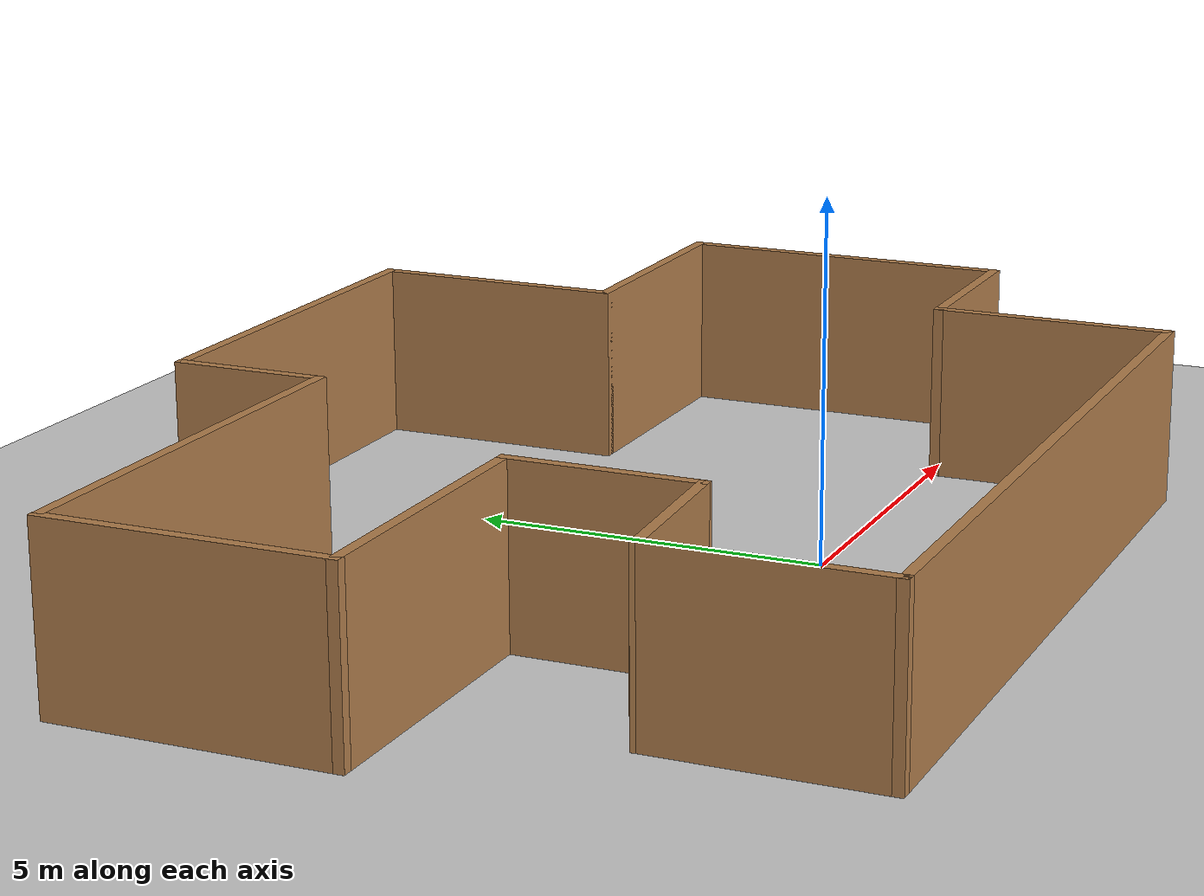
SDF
<sdf version="1.7">
 <world name="default">
  <light name="sun" type="directional">
   <pose>0 0 10 0 -0 0</pose>
   <diffuse>0.8 0.8 0.8 1</diffuse>
   <specular>0.2 0.2 0.2 1</specular>
   <attenuation>
    <range>1000</range>
    <constant>0.9</constant>
    <linear>0.01</linear>
    <quadratic>0.001</quadratic>
   </attenuation>
   <direction>-0.5 0.1 -0.9</direction>
   <spot><inner_angle>0</inner_angle><outer_angle>0</outer_angle><falloff>0</falloff></spot>
  </light>
  <model name="ground_plane">
   <static>1</static>
   <link name="link">
    <collision name="collision">
     <geometry><plane><normal>0 0 1</normal><size>100 100</size></plane></geometry>
     <surface>
      <contact><collide_bitmask>65535</collide_bitmask></contact>
      <friction><ode><mu>100</mu><mu2>50</mu2></ode></friction>
     </surface>
    </collision>
    <visual name="visual">
     <cast_shadows>0</cast_shadows>
     <geometry><plane><normal>0 0 1</normal><size>100 100</size></plane></geometry>
     <material>
      <script><uri>file://media/materials/scripts/gazebo.material</uri><name>Gazebo/Grey</name></script>
     </material>
    </visual>
   </link>
  </model>
  <gravity>0 0 -9.8</gravity>
  <magnetic_field>6e-06 2.3e-05 -4.2e-05</magnetic_field>
  <atmosphere type="adiabatic"/>
  <physics type="ode">
   <max_step_size>0.001</max_step_size>
   <real_time_factor>1</real_time_factor>
   <real_time_update_rate>1000</real_time_update_rate>
  </physics>
  <scene><ambient>0.4 0.4 0.4 1</ambient><background>0.7 0.7 0.7 1</background><shadows>1</shadows></scene>
  <spherical_coordinates>
   <surface_model>EARTH_WGS84</surface_model>
   <latitude_deg>0</latitude_deg>
   <longitude_deg>0</longitude_deg>
   <elevation>0</elevation>
   <heading_deg>0</heading_deg>
  </spherical_coordinates>
  <model name="model.world">
   <pose>-0.75927 2.45635 0 0 -0 0</pose>
   <link name="Wall_1">
    <collision name="Wall_1_Collision">
     <geometry><box><size>2.75 0.15 2.5</size></box></geometry>
     <pose>0 0 1.25 0 -0 0</pose>
    </collision>
    <visual name="Wall_1_Visual">
     <pose>0 0 1.25 0 -0 0</pose>
     <geometry><box><size>2.75 0.15 2.5</size></box></geometry>
     <material>
      <script><uri>file://media/materials/scripts/gazebo.material</uri><name>Gazebo/Wood</name></script>
      <ambient>1 1 1 1</ambient>
     </material>
     <meta><layer>0</layer></meta>
    </visual>
    <pose>-3.8 -1.35 0 0 -0 1.5708</pose>
   </link>
   <link name="Wall_10">
    <collision name="Wall_10_Collision">
     <geometry><box><size>2.75 0.15 2.5</size></box></geometry>
     <pose>0 0 1.25 0 -0 0</pose>
    </collision>
    <visual name="Wall_10_Visual">
     <pose>0 0 1.25 0 -0 0</pose>
     <geometry><box><size>2.75 0.15 2.5</size></box></geometry>
     <material>
      <script><uri>file://media/materials/scripts/gazebo.material</uri><name>Gazebo/Wood</name></script>
      <ambient>1 1 1 1</ambient>
     </material>
     <meta><layer>0</layer></meta>
    </visual>
    <pose>6.6 -2.55 0 0 -0 3.14159</pose>
   </link>
   <link name="Wall_11">
    <collision name="Wall_11_Collision">
     <geometry><box><size>3.5 0.15 2.5</size></box></geometry>
     <pose>0 0 1.25 0 -0 0</pose>
    </collision>
    <visual name="Wall_11_Visual">
     <pose>0 0 1.25 0 -0 0</pose>
     <geometry><box><size>3.5 0.15 2.5</size></box></geometry>
     <material>
      <script><uri>file://media/materials/scripts/gazebo.material</uri><name>Gazebo/Wood</name></script>
      <ambient>1 1 1 1</ambient>
     </material>
     <meta><layer>0</layer></meta>
    </visual>
    <pose>5.3 -4.225 0 0 -0 -1.5708</pose>
   </link>
   <link name="Wall_12">
    <collision name="Wall_12_Collision">
     <geometry><box><size>11.5 0.15 2.5</size></box></geometry>
     <pose>0 0 1.25 0 -0 0</pose>
    </collision>
    <visual name="Wall_12_Visual">
     <pose>0 0 1.25 0 -0 0</pose>
     <geometry><box><size>11.5 0.15 2.5</size></box></geometry>
     <material>
      <script><uri>file://media/materials/scripts/gazebo.material</uri><name>Gazebo/Wood</name></script>
      <ambient>1 1 1 1</ambient>
     </material>
     <meta><layer>0</layer></meta>
    </visual>
    <pose>-0.375 -5.9 0 0 -0 3.14159</pose>
   </link>
   <link name="Wall_13">
    <collision name="Wall_13_Collision">
     <geometry><box><size>3.25 0.15 2.5</size></box></geometry>
     <pose>0 0 1.25 0 -0 0</pose>
    </collision>
    <visual name="Wall_13_Visual">
     <pose>0 0 1.25 0 -0 0</pose>
     <geometry><box><size>3.25 0.15 2.5</size></box></geometry>
     <material>
      <script><uri>file://media/materials/scripts/gazebo.material</uri><name>Gazebo/Wood</name></script>
      <ambient>1 1 1 1</ambient>
     </material>
     <meta><layer>0</layer></meta>
    </visual>
    <pose>-6.05 -4.35 0 0 -0 1.5708</pose>
   </link>
   <link name="Wall_14">
    <collision name="Wall_14_Collision">
     <geometry><box><size>2.40499 0.15 2.5</size></box></geometry>
     <pose>0 0 1.25 0 -0 0</pose>
    </collision>
    <visual name="Wall_14_Visual">
     <pose>0 0 1.25 0 -0 0</pose>
     <geometry><box><size>2.40499 0.15 2.5</size></box></geometry>
     <material>
      <script><uri>file://media/materials/scripts/gazebo.material</uri><name>Gazebo/Wood</name></script>
      <ambient>1 1 1 1</ambient>
     </material>
     <meta><layer>0</layer></meta>
    </visual>
    <pose>-4.925 -2.725 0 0 -0 0.066568</pose>
   </link>
   <link name="Wall_2">
    <collision name="Wall_2_Collision">
     <geometry><box><size>4.25 0.15 2.5</size></box></geometry>
     <pose>0 0 1.25 0 -0 0</pose>
    </collision>
    <visual name="Wall_2_Visual">
     <pose>0 0 1.25 0 -0 0</pose>
     <geometry><box><size>4.25 0.15 2.5</size></box></geometry>
     <material>
      <script><uri>file://media/materials/scripts/gazebo.material</uri><name>Gazebo/Wood</name></script>
      <ambient>1 1 1 1</ambient>
     </material>
     <meta><layer>0</layer></meta>
    </visual>
    <pose>-5.85 -0.05 0 0 -0 3.14159</pose>
   </link>
   <link name="Wall_3">
    <collision name="Wall_3_Collision">
     <geometry><box><size>4 0.15 2.5</size></box></geometry>
     <pose>0 0 1.25 0 -0 0</pose>
    </collision>
    <visual name="Wall_3_Visual">
     <pose>0 0 1.25 0 -0 0</pose>
     <geometry><box><size>4 0.15 2.5</size></box></geometry>
     <material>
      <script><uri>file://media/materials/scripts/gazebo.material</uri><name>Gazebo/Wood</name></script>
      <ambient>1 1 1 1</ambient>
     </material>
     <meta><layer>0</layer></meta>
    </visual>
    <pose>-7.9 1.875 0 0 -0 1.5708</pose>
   </link>
   <link name="Wall_4">
    <collision name="Wall_4_Collision">
     <geometry><box><size>6.5 0.15 2.5</size></box></geometry>
     <pose>0 0 1.25 0 -0 0</pose>
    </collision>
    <visual name="Wall_4_Visual">
     <pose>0 0 1.25 0 -0 0</pose>
     <geometry><box><size>6.5 0.15 2.5</size></box></geometry>
     <material>
      <script><uri>file://media/materials/scripts/gazebo.material</uri><name>Gazebo/Wood</name></script>
      <ambient>1 1 1 1</ambient>
     </material>
     <meta><layer>0</layer></meta>
    </visual>
    <pose>-4.725 3.8 0 0 -0 0</pose>
   </link>
   <link name="Wall_5">
    <collision name="Wall_5_Collision">
     <geometry><box><size>2.25 0.15 2.5</size></box></geometry>
     <pose>0 0 1.25 0 -0 0</pose>
    </collision>
    <visual name="Wall_5_Visual">
     <pose>0 0 1.25 0 -0 0</pose>
     <geometry><box><size>2.25 0.15 2.5</size></box></geometry>
     <material>
      <script><uri>file://media/materials/scripts/gazebo.material</uri><name>Gazebo/Wood</name></script>
      <ambient>1 1 1 1</ambient>
     </material>
     <meta><layer>0</layer></meta>
    </visual>
    <pose>-1.55 4.85 0 0 -0 1.5708</pose>
   </link>
   <link name="Wall_6">
    <collision name="Wall_6_Collision">
     <geometry><box><size>6 0.15 2.5</size></box></geometry>
     <pose>0 0 1.25 0 -0 0</pose>
    </collision>
    <visual name="Wall_6_Visual">
     <pose>0 0 1.25 0 -0 0</pose>
     <geometry><box><size>6 0.15 2.5</size></box></geometry>
     <material>
      <script><uri>file://media/materials/scripts/gazebo.material</uri><name>Gazebo/Wood</name></script>
      <ambient>1 1 1 1</ambient>
     </material>
     <meta><layer>0</layer></meta>
    </visual>
    <pose>1.375 5.9 0 0 -0 0</pose>
   </link>
   <link name="Wall_7">
    <collision name="Wall_7_Collision">
     <geometry><box><size>3.75 0.15 2.5</size></box></geometry>
     <pose>0 0 1.25 0 -0 0</pose>
    </collision>
    <visual name="Wall_7_Visual">
     <pose>0 0 1.25 0 -0 0</pose>
     <geometry><box><size>3.75 0.15 2.5</size></box></geometry>
     <material>
      <script><uri>file://media/materials/scripts/gazebo.material</uri><name>Gazebo/Wood</name></script>
      <ambient>1 1 1 1</ambient>
     </material>
     <meta><layer>0</layer></meta>
    </visual>
    <pose>4.3 4.1 0 0 -0 -1.5708</pose>
   </link>
   <link name="Wall_8">
    <collision name="Wall_8_Collision">
     <geometry><box><size>3.75 0.15 2.5</size></box></geometry>
     <pose>0 0 1.25 0 -0 0</pose>
    </collision>
    <visual name="Wall_8_Visual">
     <pose>0 0 1.25 0 -0 0</pose>
     <geometry><box><size>3.75 0.15 2.5</size></box></geometry>
     <material>
      <script><uri>file://media/materials/scripts/gazebo.material</uri><name>Gazebo/Wood</name></script>
      <ambient>1 1 1 1</ambient>
     </material>
     <meta><layer>0</layer></meta>
    </visual>
    <pose>6.1 2.3 0 0 -0 0</pose>
   </link>
   <link name="Wall_9">
    <collision name="Wall_9_Collision">
     <geometry><box><size>5 0.15 2.5</size></box></geometry>
     <pose>0 0 1.25 0 -0 0</pose>
    </collision>
    <visual name="Wall_9_Visual">
     <pose>0 0 1.25 0 -0 0</pose>
     <geometry><box><size>5 0.15 2.5</size></box></geometry>
     <material>
      <script><uri>file://media/materials/scripts/gazebo.material</uri><name>Gazebo/Wood</name></script>
      <ambient>1 1 1 1</ambient>
     </material>
     <meta><layer>0</layer></meta>
    </visual>
    <pose>7.9 -0.125 0 0 -0 -1.5708</pose>
   </link>
   <static>1</static>
  </model>
 </world>
</sdf>
